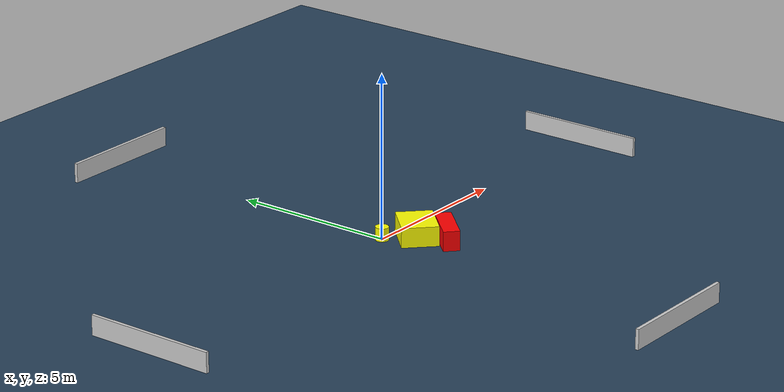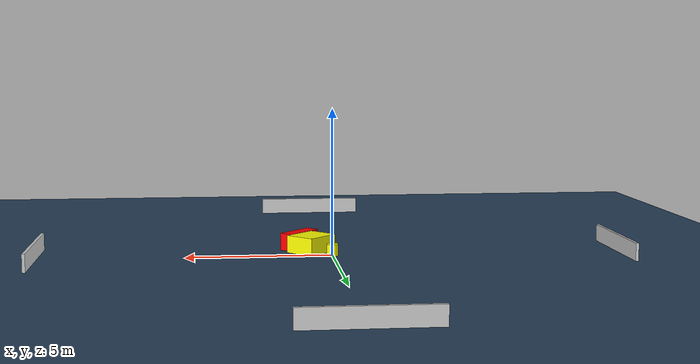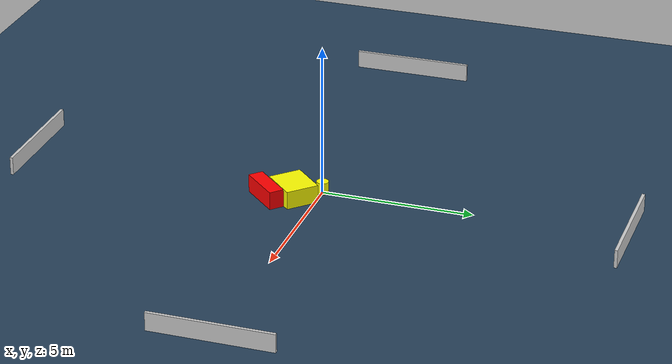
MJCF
<?xml version="1.0" ?>
<mujoco model="generated_environment">
  <option timestep="0.01" integrator="RK4" cone="elliptic"/>
  <default>
    <geom density="1"/>
  </default>
  <asset>
    <texture builtin="gradient" height="3072" name="skybox" rgb1="0.3 0.5 0.7" rgb2="0 0 0" type="skybox" width="512"/>
    <texture builtin="checker" height="300" name="groundplane" rgb1="0.2 0.3 0.4" rgb2="0.1 0.2 0.3" type="2d" width="300"/>
    <material name="groundplane" reflectance="0.2" texrepeat="5 5" texture="groundplane"/>
  </asset>
  <worldbody>
    <light dir="0 0 -1" directional="true" pos="0 0 1.5"/>
    <geom condim="3" friction="0.5 0.005 0.001" material="groundplane" name="floor" pos="0 0 0" size="0 0 0.05" type="plane"/>
    <body name="walls">
      <geom name="wall_1" condim="4" pos="-10.0 0.0 0.3" rgba="0.800000011920929 0.800000011920929 0.800000011920929 1.0" size="0.05 2.0 0.3" type="box"/>
      <geom name="wall_2" condim="4" pos="10.0 0.0 0.3" rgba="0.800000011920929 0.800000011920929 0.800000011920929 1.0" size="0.05 2.0 0.3" type="box"/>
      <geom name="wall_3" condim="4" pos="0.0 -10.0 0.3" rgba="0.800000011920929 0.800000011920929 0.800000011920929 1.0" size="2.0 0.05 0.3" type="box"/>
      <geom name="wall_4" condim="4" pos="0.0 10.0 0.3" rgba="0.800000011920929 0.800000011920929 0.800000011920929 1.0" size="2.0 0.05 0.3" type="box"/>
    </body>
    <body name="robot">
      <joint name="joint_x" type="slide" pos="0 0 0" axis="1 0 0"/>
      <joint name="joint_y" type="slide" pos="0 0 0" axis="0 1 0"/>
      <geom name="robot" type="cylinder" pos="0.0 0.0 0.2" size="0.2 0.2 0.0" mass="5.0" friction="1.0 0.005 0.0001" condim="4" rgba="1.0 1.0 0.0 1.0"/>
    </body>
    <body name="obstacle_1_movable">
      <geom name="obstacle_1_movable" condim="4" pos="0.6584220150928088 -0.755701238990107 0.3" euler="0 0 45.55582380350517" friction="0.0 0.005 0.001" rgba="1.0 1.0 0.0 1.0" size="0.6454804443596531 0.5469544959704182 0.3" type="box" mass="0.1"/>
      <joint type="free"/>
    </body>
    <body name="obstacle_2_static">
      <geom name="obstacle_2_static" condim="4" pos="1.0165996727017743 -1.5581547231453488 0.3" euler="0 0 46.613318411767565" friction="0.0 0.005 0.001" rgba="1.0 0.0 0.0 1.0" size="0.7382540041136718 0.2457212581865394 0.3" type="box"/>
    </body>
  </worldbody>
  <actuator>
    <motor name="actuator_x" joint="joint_x" gear="1" ctrlrange="-1 1"/>
    <motor name="actuator_y" joint="joint_y" gear="1" ctrlrange="-1 1"/>
  </actuator>
</mujoco>
